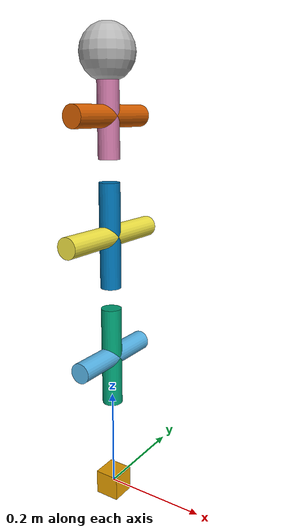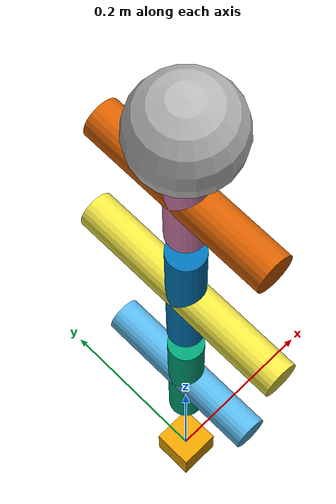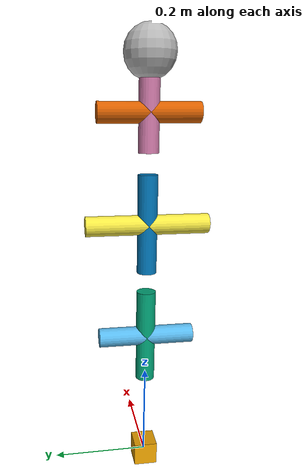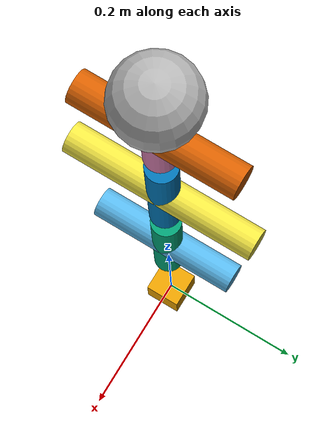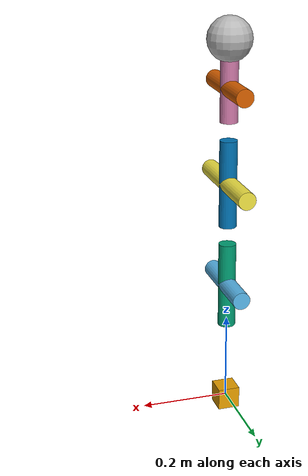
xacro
<?xml version="1.0"?>
<robot xmlns:xacro="http://www.ros.org/wiki/xacro">
    <!-- Base Link -->
    <link name="base_link">
        <visual>
            <geometry>
                <box size="0.05 0.05 0.05"/>
            </geometry>
        </visual>
        <collision>
            <geometry>
                <box size="0.05 0.05 0.05"/>
            </geometry>
        </collision>
    </link>

    <!-- Joint 1 -->
    <joint name="joint1" type="revolute">
        <origin xyz="0 0 0.2848" rpy="-${pi/2} 0 0"/>
        <parent link="base_link"/>
        <child link="link1"/>
        <axis xyz="0 1 0"/>
        <limit lower="-3.1415" upper="3.1415" effort="100" velocity="1"/>
    </joint>
    <link name="link1">
        <visual>
            <geometry>
                <cylinder length="0.2" radius="0.02"/>
            </geometry>
        </visual>
        <collision>
            <geometry>
                <cylinder length="0.2" radius="0.02"/>
            </geometry>
        </collision>
    </link>

    <!-- Joint 2 -->
    <joint name="joint2" type="revolute">
        <origin xyz="0 0 0" rpy="${pi/2} 0 0"/>
        <parent link="link1"/>
        <child link="link2"/>
        <axis xyz="0 1 0"/>
        <limit lower="-3.1415" upper="3.1415" effort="100" velocity="1"/>
    </joint>
    <link name="link2">
        <visual>
            <geometry>
                <cylinder length="0.2" radius="0.02"/>
            </geometry>
        </visual>
        <collision>
            <geometry>
                <cylinder length="0.2" radius="0.02"/>
            </geometry>
        </collision>
    </link>

    <!-- Joint 3 -->
    <joint name="joint3" type="revolute">
        <origin xyz="0 0 0.2420" rpy="-${pi/2} 0 0"/>
        <parent link="link2"/>
        <child link="link3"/>
        <axis xyz="0 1 0"/>
        <limit lower="-3.1415" upper="3.1415" effort="100" velocity="1"/>
    </joint>
    <link name="link3">
        <visual>
            <geometry>
                <cylinder length="0.25" radius="0.02"/> <!-- Updated length to 0.25 to match the corrected DH parameters -->
            </geometry>
        </visual>
        <collision>
            <geometry>
                <cylinder length="0.25" radius="0.02"/>
            </geometry>
        </collision>
    </link>

    <!-- Joint 4 -->
    <joint name="joint4" type="revolute">
        <origin xyz="0 0 0" rpy="${pi/2} 0 0"/>
        <parent link="link3"/>
        <child link="link4"/>
        <axis xyz="0 1 0"/>
        <limit lower="-3.1415" upper="3.1415" effort="100" velocity="1"/>
    </joint>
    <link name="link4">
        <visual>
            <geometry>
                <cylinder length="0.2" radius="0.02"/>
            </geometry>
        </visual>
        <collision>
            <geometry>
                <cylinder length="0.2" radius="0.02"/>
            </geometry>
        </collision>
    </link>

    <!-- Joint 5 -->
    <joint name="joint5" type="revolute">
        <origin xyz="0 0 0.2160" rpy="-${pi/2} 0 0"/>
        <parent link="link4"/>
        <child link="link5"/>
        <axis xyz="0 1 0"/>
        <limit lower="-3.1415" upper="3.1415" effort="100" velocity="1"/>
    </joint>
    <link name="link5">
        <visual>
            <geometry>
                <cylinder length="0.2" radius="0.02"/> <!-- Length remains as per default since it's not specified in the DH table -->
            </geometry>
        </visual>
        <collision>
            <geometry>
                <cylinder length="0.2" radius="0.02"/>
            </geometry>
        </collision>
    </link>

    <!-- Joint 6 -->
    <joint name="joint6" type="revolute">
        <origin xyz="0 0 0" rpy="${pi/2} 0 0"/>
        <parent link="link5"/>
        <child link="link6"/>
        <axis xyz="0 1 0"/>
        <limit lower="-3.1415" upper="3.1415" effort="100" velocity="1"/>
    </joint>
    <link name="link6">
        <visual>
            <geometry>
                <cylinder length="0.15" radius="0.02"/> <!-- Updated length to 0.15 to match DH parameter for d -->
            </geometry>
        </visual>
        <collision>
            <geometry>
                <cylinder length="0.15" radius="0.02"/>
            </geometry>
        </collision>
    </link>

    <!-- Joint 7 (Wrist) -->
    <joint name="joint7" type="revolute">
        <origin xyz="0 0 0.10593" rpy="0 0 0"/>
        <parent link="link6"/>
        <child link="hand_link"/>
        <axis xyz="0 1 0"/>
        <limit lower="-3.1415" upper="3.1415" effort="100" velocity="1"/>
    </joint>
    <link name="hand_link">
        <visual>
            <geometry>
                <sphere radius="0.05"/>
            </geometry>
        </visual>
        <collision>
            <geometry>
                <sphere radius="0.05"/>
            </geometry>
        </collision>
    </link>
</robot>
